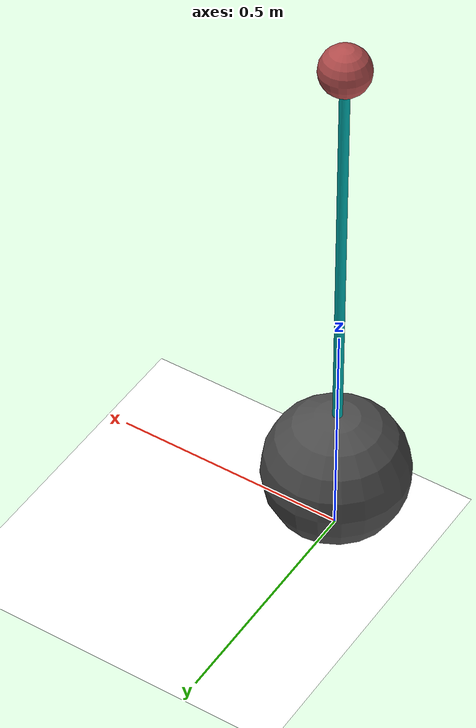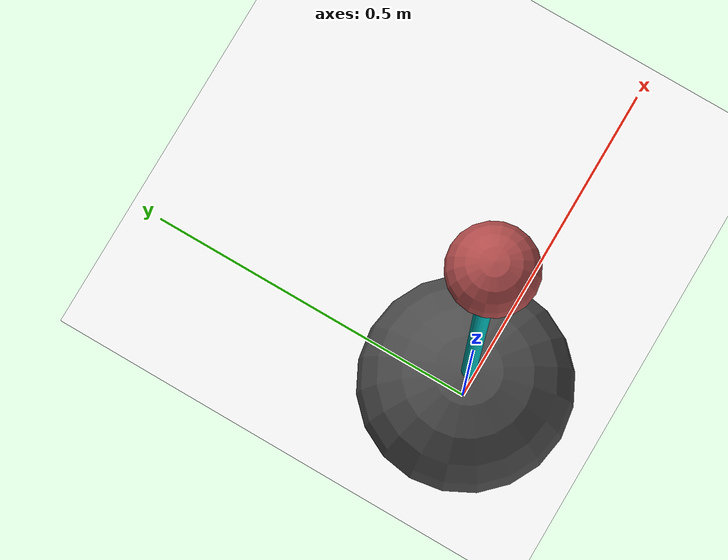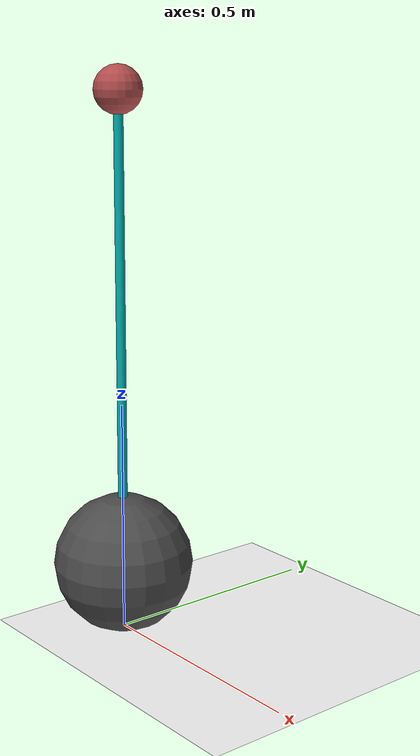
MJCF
<mujoco model="spherical_pendulum">
    <compiler angle="radian" coordinate="local"/>
    <option timestep="0.001" integrator="RK4" gravity="0 0 -9.81"/>
    <default>
        <geom rgba="1 1 1 1" />
        <joint damping="0.2"/>
    </default>
    <visual>
        <global offwidth="1920" offheight="1080"/>
    </visual>
    <asset>
        <texture name="checker" type="2d" builtin="checker" rgb1="0 0 0" rgb2="1 1 1" width="100" height="100" mark="none"/>
        <material name="checker_mat" texture="checker" specular="0.5" shininess="0.6" texrepeat="10 10"/>
    </asset>
    <worldbody>
        <light pos="0 0 10" dir="0 0 -1" diffuse="1 1 1" specular="0 0 0"/>
        <geom name="floor" type="plane" material="checker_mat" size="10 10 0.1"/>
        <body name="base" pos="0 0 0.15">
            <freejoint name="base_free"/>
            <geom name="base_sphere" type="sphere" size="0.15" mass="10" rgba="0.3 0.3 0.3 1"/>
            <body name="pendulum" pos="0 0 0">
                <joint name="ball_joint" type="ball" pos="0 0 0" range="0 3.1416" damping="0.2"/>
                <geom name="rod" type="capsule" fromto="0 0 0 0 0 1.0" size="0.01" mass="1.5" rgba="0 0.7 0.7 1"/>
                <geom name="tip_sphere" type="sphere" pos="0 0 1.0" size="0.05" mass="0.1" rgba="0.7 0.3 0.3 1"/>
                <site name="tip" pos="0 0 1.0" size="0.02"/>
            </body>
        </body>
    </worldbody>
    <actuator>
        <motor name="torque_x" joint="ball_joint" gear="1 0 0" ctrlrange="-50 50"/>
        <motor name="torque_y" joint="ball_joint" gear="0 1 0" ctrlrange="-50 50"/>
    </actuator>
    <sensor>
        <framequat name="angle" objtype="body" objname="pendulum"/>
        <frameangvel name="velocity" objtype="body" objname="pendulum"/>
        <framepos name="base_pos" objtype="body" objname="base"/>
        <framexaxis name="base_xaxis" objtype="body" objname="base"/>
        <frameyaxis name="base_yaxis" objtype="body" objname="base"/>
        <framezaxis name="base_zaxis" objtype="body" objname="base"/>
    </sensor>
</mujoco>
